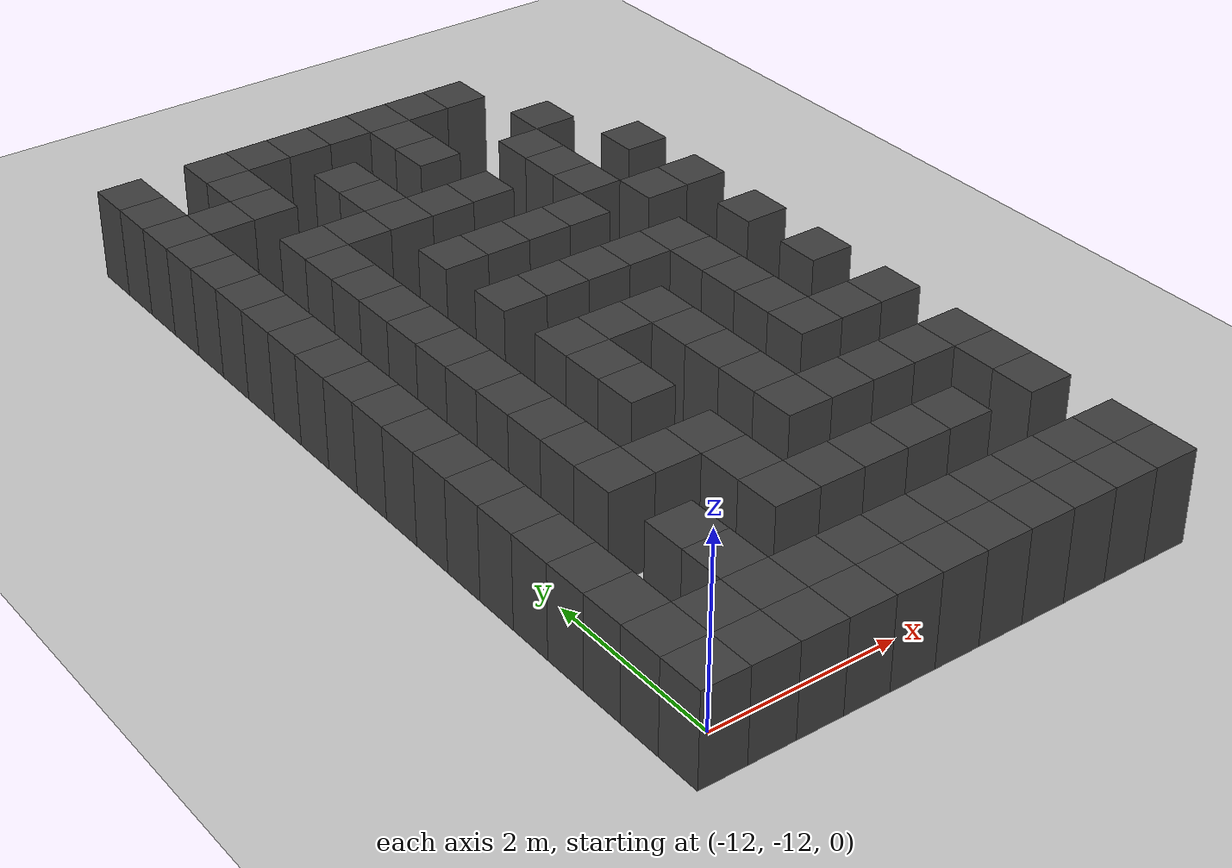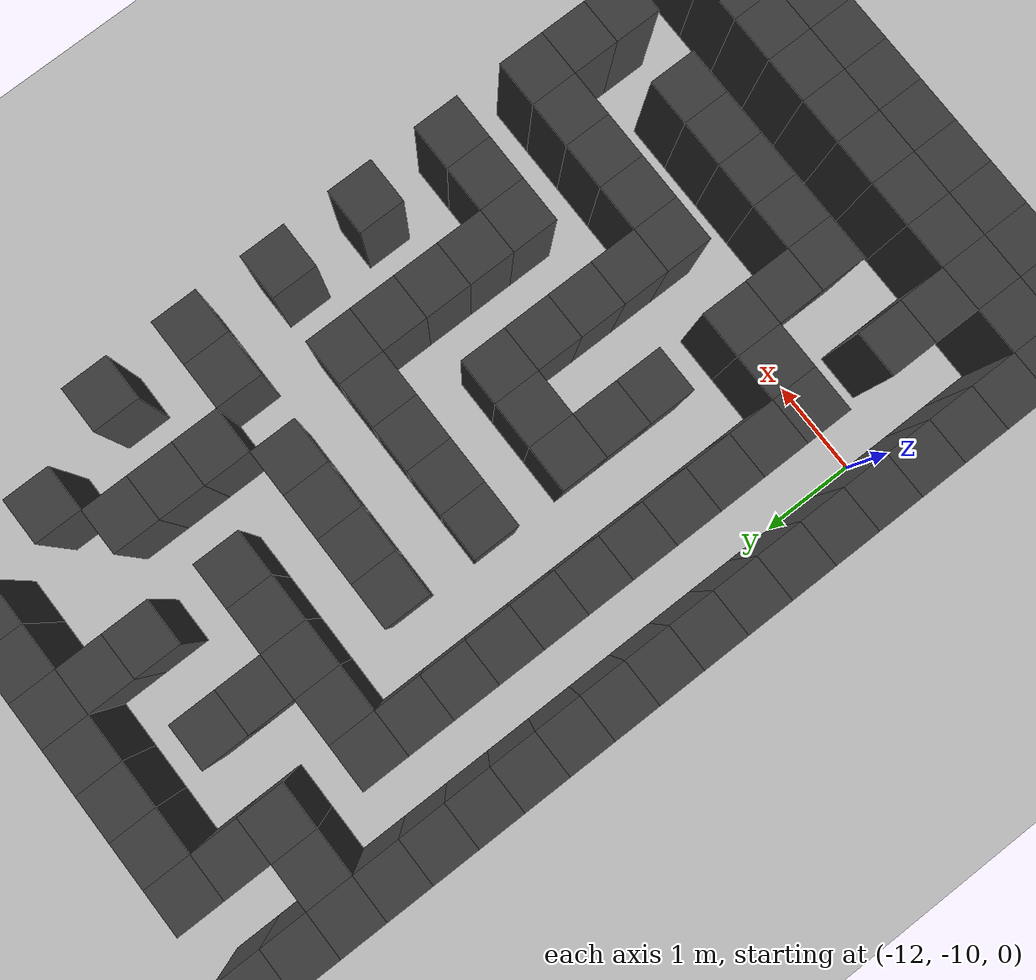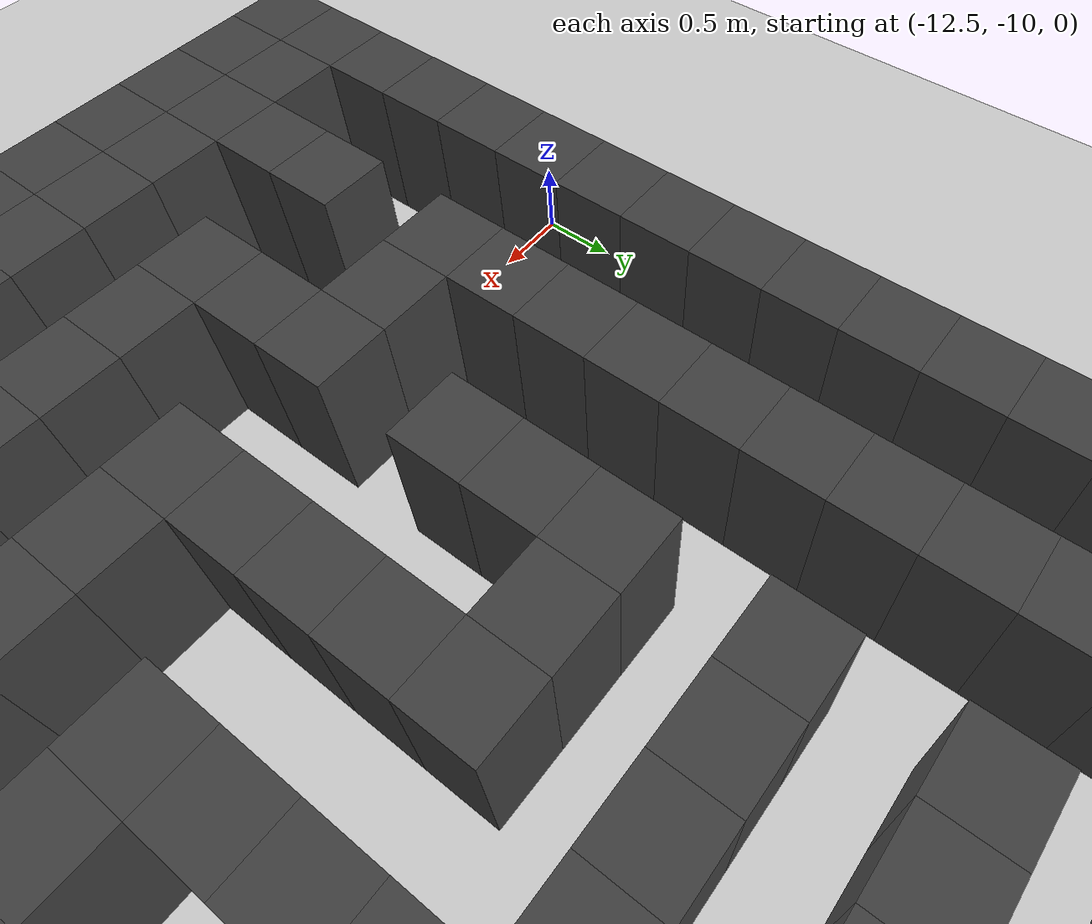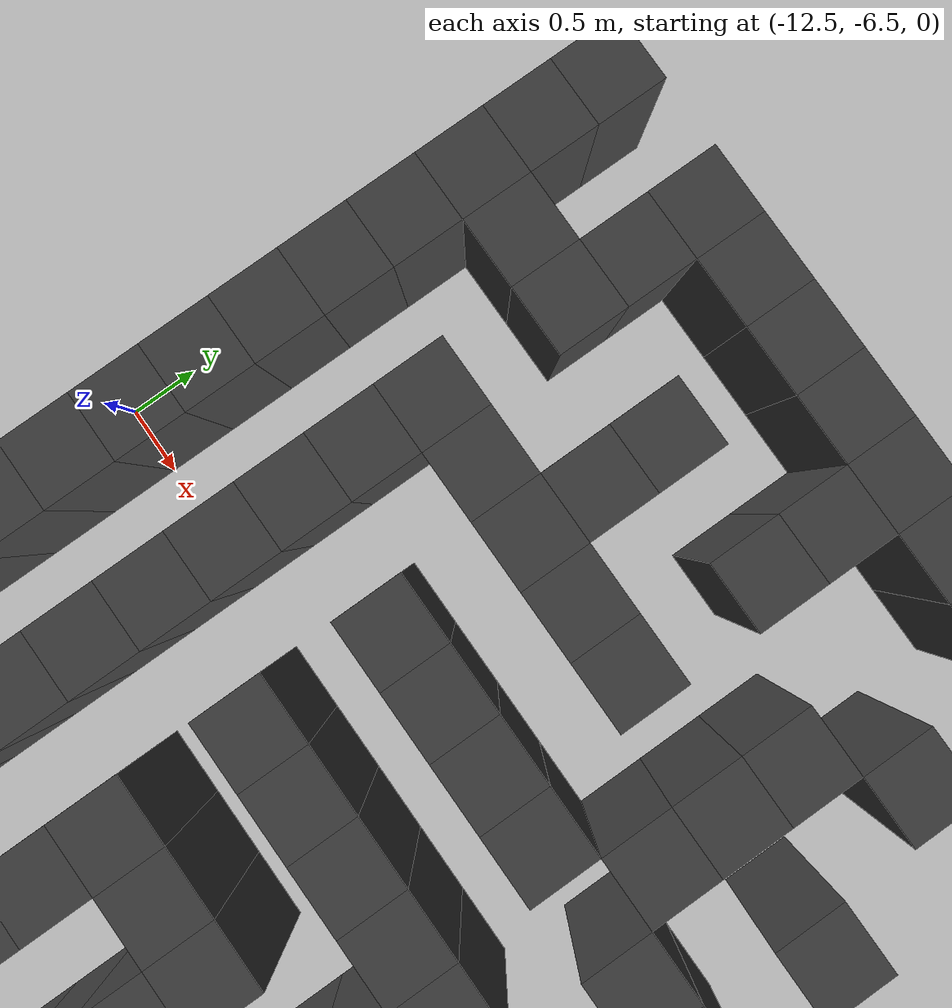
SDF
<sdf version="1.7">
 <world name="map_18505">
  <model name="ground_plane">
   <static>true</static>
   <link name="link">
    <collision name="collision">
     <geometry><plane><normal>0 0 1</normal><size>200 200</size></plane></geometry>
    </collision>
    <visual name="visual">
     <geometry><plane><normal>0 0 1</normal><size>200 200</size></plane></geometry>
     <material><ambient>0.8 0.8 0.8 1</ambient><diffuse>0.8 0.8 0.8 1</diffuse></material>
    </visual>
   </link>
  </model>
  <model name="maze_environment">
   <static>true</static>
   <link name="wall_759">
    <pose>-12.250 -2.750 0.500 0 0 0</pose>
    <collision name="col"><geometry><box><size>0.5 0.5 1.0</size></box></geometry></collision>
    <visual name="vis">
     <geometry><box><size>0.5 0.5 1.0</size></box></geometry>
     <material><ambient>0.15 0.15 0.15 1</ambient><diffuse>0.25 0.25 0.25 1</diffuse></material>
    </visual>
   </link>
   <link name="wall_760">
    <pose>-11.250 -2.750 0.500 0 0 0</pose>
    <collision name="col"><geometry><box><size>0.5 0.5 1.0</size></box></geometry></collision>
    <visual name="vis">
     <geometry><box><size>0.5 0.5 1.0</size></box></geometry>
     <material><ambient>0.15 0.15 0.15 1</ambient><diffuse>0.25 0.25 0.25 1</diffuse></material>
    </visual>
   </link>
   <link name="wall_761">
    <pose>-10.750 -2.750 0.500 0 0 0</pose>
    <collision name="col"><geometry><box><size>0.5 0.5 1.0</size></box></geometry></collision>
    <visual name="vis">
     <geometry><box><size>0.5 0.5 1.0</size></box></geometry>
     <material><ambient>0.15 0.15 0.15 1</ambient><diffuse>0.25 0.25 0.25 1</diffuse></material>
    </visual>
   </link>
   <link name="wall_762">
    <pose>-10.250 -2.750 0.500 0 0 0</pose>
    <collision name="col"><geometry><box><size>0.5 0.5 1.0</size></box></geometry></collision>
    <visual name="vis">
     <geometry><box><size>0.5 0.5 1.0</size></box></geometry>
     <material><ambient>0.15 0.15 0.15 1</ambient><diffuse>0.25 0.25 0.25 1</diffuse></material>
    </visual>
   </link>
   <link name="wall_763">
    <pose>-9.750 -2.750 0.500 0 0 0</pose>
    <collision name="col"><geometry><box><size>0.5 0.5 1.0</size></box></geometry></collision>
    <visual name="vis">
     <geometry><box><size>0.5 0.5 1.0</size></box></geometry>
     <material><ambient>0.15 0.15 0.15 1</ambient><diffuse>0.25 0.25 0.25 1</diffuse></material>
    </visual>
   </link>
   <link name="wall_764">
    <pose>-9.250 -2.750 0.500 0 0 0</pose>
    <collision name="col"><geometry><box><size>0.5 0.5 1.0</size></box></geometry></collision>
    <visual name="vis">
     <geometry><box><size>0.5 0.5 1.0</size></box></geometry>
     <material><ambient>0.15 0.15 0.15 1</ambient><diffuse>0.25 0.25 0.25 1</diffuse></material>
    </visual>
   </link>
   <link name="wall_765">
    <pose>-8.750 -2.750 0.500 0 0 0</pose>
    <collision name="col"><geometry><box><size>0.5 0.5 1.0</size></box></geometry></collision>
    <visual name="vis">
     <geometry><box><size>0.5 0.5 1.0</size></box></geometry>
     <material><ambient>0.15 0.15 0.15 1</ambient><diffuse>0.25 0.25 0.25 1</diffuse></material>
    </visual>
   </link>
   <link name="wall_766">
    <pose>-8.250 -2.750 0.500 0 0 0</pose>
    <collision name="col"><geometry><box><size>0.5 0.5 1.0</size></box></geometry></collision>
    <visual name="vis">
     <geometry><box><size>0.5 0.5 1.0</size></box></geometry>
     <material><ambient>0.15 0.15 0.15 1</ambient><diffuse>0.25 0.25 0.25 1</diffuse></material>
    </visual>
   </link>
   <link name="wall_799">
    <pose>-12.250 -3.250 0.500 0 0 0</pose>
    <collision name="col"><geometry><box><size>0.5 0.5 1.0</size></box></geometry></collision>
    <visual name="vis">
     <geometry><box><size>0.5 0.5 1.0</size></box></geometry>
     <material><ambient>0.15 0.15 0.15 1</ambient><diffuse>0.25 0.25 0.25 1</diffuse></material>
    </visual>
   </link>
   <link name="wall_800">
    <pose>-11.250 -3.250 0.500 0 0 0</pose>
    <collision name="col"><geometry><box><size>0.5 0.5 1.0</size></box></geometry></collision>
    <visual name="vis">
     <geometry><box><size>0.5 0.5 1.0</size></box></geometry>
     <material><ambient>0.15 0.15 0.15 1</ambient><diffuse>0.25 0.25 0.25 1</diffuse></material>
    </visual>
   </link>
   <link name="wall_801">
    <pose>-9.250 -3.250 0.500 0 0 0</pose>
    <collision name="col"><geometry><box><size>0.5 0.5 1.0</size></box></geometry></collision>
    <visual name="vis">
     <geometry><box><size>0.5 0.5 1.0</size></box></geometry>
     <material><ambient>0.15 0.15 0.15 1</ambient><diffuse>0.25 0.25 0.25 1</diffuse></material>
    </visual>
   </link>
   <link name="wall_811">
    <pose>-12.250 -3.750 0.500 0 0 0</pose>
    <collision name="col"><geometry><box><size>0.5 0.5 1.0</size></box></geometry></collision>
    <visual name="vis">
     <geometry><box><size>0.5 0.5 1.0</size></box></geometry>
     <material><ambient>0.15 0.15 0.15 1</ambient><diffuse>0.25 0.25 0.25 1</diffuse></material>
    </visual>
   </link>
   <link name="wall_812">
    <pose>-11.750 -3.750 0.500 0 0 0</pose>
    <collision name="col"><geometry><box><size>0.5 0.5 1.0</size></box></geometry></collision>
    <visual name="vis">
     <geometry><box><size>0.5 0.5 1.0</size></box></geometry>
     <material><ambient>0.15 0.15 0.15 1</ambient><diffuse>0.25 0.25 0.25 1</diffuse></material>
    </visual>
   </link>
   <link name="wall_813">
    <pose>-11.250 -3.750 0.500 0 0 0</pose>
    <collision name="col"><geometry><box><size>0.5 0.5 1.0</size></box></geometry></collision>
    <visual name="vis">
     <geometry><box><size>0.5 0.5 1.0</size></box></geometry>
     <material><ambient>0.15 0.15 0.15 1</ambient><diffuse>0.25 0.25 0.25 1</diffuse></material>
    </visual>
   </link>
   <link name="wall_814">
    <pose>-10.250 -3.750 0.500 0 0 0</pose>
    <collision name="col"><geometry><box><size>0.5 0.5 1.0</size></box></geometry></collision>
    <visual name="vis">
     <geometry><box><size>0.5 0.5 1.0</size></box></geometry>
     <material><ambient>0.15 0.15 0.15 1</ambient><diffuse>0.25 0.25 0.25 1</diffuse></material>
    </visual>
   </link>
   <link name="wall_815">
    <pose>-9.250 -3.750 0.500 0 0 0</pose>
    <collision name="col"><geometry><box><size>0.5 0.5 1.0</size></box></geometry></collision>
    <visual name="vis">
     <geometry><box><size>0.5 0.5 1.0</size></box></geometry>
     <material><ambient>0.15 0.15 0.15 1</ambient><diffuse>0.25 0.25 0.25 1</diffuse></material>
    </visual>
   </link>
   <link name="wall_816">
    <pose>-7.750 -3.750 0.500 0 0 0</pose>
    <collision name="col"><geometry><box><size>0.5 0.5 1.0</size></box></geometry></collision>
    <visual name="vis">
     <geometry><box><size>0.5 0.5 1.0</size></box></geometry>
     <material><ambient>0.15 0.15 0.15 1</ambient><diffuse>0.25 0.25 0.25 1</diffuse></material>
    </visual>
   </link>
   <link name="wall_846">
    <pose>-12.250 -4.250 0.500 0 0 0</pose>
    <collision name="col"><geometry><box><size>0.5 0.5 1.0</size></box></geometry></collision>
    <visual name="vis">
     <geometry><box><size>0.5 0.5 1.0</size></box></geometry>
     <material><ambient>0.15 0.15 0.15 1</ambient><diffuse>0.25 0.25 0.25 1</diffuse></material>
    </visual>
   </link>
   <link name="wall_847">
    <pose>-10.250 -4.250 0.500 0 0 0</pose>
    <collision name="col"><geometry><box><size>0.5 0.5 1.0</size></box></geometry></collision>
    <visual name="vis">
     <geometry><box><size>0.5 0.5 1.0</size></box></geometry>
     <material><ambient>0.15 0.15 0.15 1</ambient><diffuse>0.25 0.25 0.25 1</diffuse></material>
    </visual>
   </link>
   <link name="wall_848">
    <pose>-8.250 -4.250 0.500 0 0 0</pose>
    <collision name="col"><geometry><box><size>0.5 0.5 1.0</size></box></geometry></collision>
    <visual name="vis">
     <geometry><box><size>0.5 0.5 1.0</size></box></geometry>
     <material><ambient>0.15 0.15 0.15 1</ambient><diffuse>0.25 0.25 0.25 1</diffuse></material>
    </visual>
   </link>
   <link name="wall_862">
    <pose>-12.250 -4.750 0.500 0 0 0</pose>
    <collision name="col"><geometry><box><size>0.5 0.5 1.0</size></box></geometry></collision>
    <visual name="vis">
     <geometry><box><size>0.5 0.5 1.0</size></box></geometry>
     <material><ambient>0.15 0.15 0.15 1</ambient><diffuse>0.25 0.25 0.25 1</diffuse></material>
    </visual>
   </link>
   <link name="wall_863">
    <pose>-11.250 -4.750 0.500 0 0 0</pose>
    <collision name="col"><geometry><box><size>0.5 0.5 1.0</size></box></geometry></collision>
    <visual name="vis">
     <geometry><box><size>0.5 0.5 1.0</size></box></geometry>
     <material><ambient>0.15 0.15 0.15 1</ambient><diffuse>0.25 0.25 0.25 1</diffuse></material>
    </visual>
   </link>
   <link name="wall_864">
    <pose>-10.750 -4.750 0.500 0 0 0</pose>
    <collision name="col"><geometry><box><size>0.5 0.5 1.0</size></box></geometry></collision>
    <visual name="vis">
     <geometry><box><size>0.5 0.5 1.0</size></box></geometry>
     <material><ambient>0.15 0.15 0.15 1</ambient><diffuse>0.25 0.25 0.25 1</diffuse></material>
    </visual>
   </link>
   <link name="wall_865">
    <pose>-10.250 -4.750 0.500 0 0 0</pose>
    <collision name="col"><geometry><box><size>0.5 0.5 1.0</size></box></geometry></collision>
    <visual name="vis">
     <geometry><box><size>0.5 0.5 1.0</size></box></geometry>
     <material><ambient>0.15 0.15 0.15 1</ambient><diffuse>0.25 0.25 0.25 1</diffuse></material>
    </visual>
   </link>
   <link name="wall_866">
    <pose>-9.750 -4.750 0.500 0 0 0</pose>
    <collision name="col"><geometry><box><size>0.5 0.5 1.0</size></box></geometry></collision>
    <visual name="vis">
     <geometry><box><size>0.5 0.5 1.0</size></box></geometry>
     <material><ambient>0.15 0.15 0.15 1</ambient><diffuse>0.25 0.25 0.25 1</diffuse></material>
    </visual>
   </link>
   <link name="wall_867">
    <pose>-9.250 -4.750 0.500 0 0 0</pose>
    <collision name="col"><geometry><box><size>0.5 0.5 1.0</size></box></geometry></collision>
    <visual name="vis">
     <geometry><box><size>0.5 0.5 1.0</size></box></geometry>
     <material><ambient>0.15 0.15 0.15 1</ambient><diffuse>0.25 0.25 0.25 1</diffuse></material>
    </visual>
   </link>
   <link name="wall_868">
    <pose>-8.250 -4.750 0.500 0 0 0</pose>
    <collision name="col"><geometry><box><size>0.5 0.5 1.0</size></box></geometry></collision>
    <visual name="vis">
     <geometry><box><size>0.5 0.5 1.0</size></box></geometry>
     <material><ambient>0.15 0.15 0.15 1</ambient><diffuse>0.25 0.25 0.25 1</diffuse></material>
    </visual>
   </link>
   <link name="wall_869">
    <pose>-7.250 -4.750 0.500 0 0 0</pose>
    <collision name="col"><geometry><box><size>0.5 0.5 1.0</size></box></geometry></collision>
    <visual name="vis">
     <geometry><box><size>0.5 0.5 1.0</size></box></geometry>
     <material><ambient>0.15 0.15 0.15 1</ambient><diffuse>0.25 0.25 0.25 1</diffuse></material>
    </visual>
   </link>
   <link name="wall_894">
    <pose>-12.250 -5.250 0.500 0 0 0</pose>
    <collision name="col"><geometry><box><size>0.5 0.5 1.0</size></box></geometry></collision>
    <visual name="vis">
     <geometry><box><size>0.5 0.5 1.0</size></box></geometry>
     <material><ambient>0.15 0.15 0.15 1</ambient><diffuse>0.25 0.25 0.25 1</diffuse></material>
    </visual>
   </link>
   <link name="wall_895">
    <pose>-11.250 -5.250 0.500 0 0 0</pose>
    <collision name="col"><geometry><box><size>0.5 0.5 1.0</size></box></geometry></collision>
    <visual name="vis">
     <geometry><box><size>0.5 0.5 1.0</size></box></geometry>
     <material><ambient>0.15 0.15 0.15 1</ambient><diffuse>0.25 0.25 0.25 1</diffuse></material>
    </visual>
   </link>
   <link name="wall_896">
    <pose>-8.250 -5.250 0.500 0 0 0</pose>
    <collision name="col"><geometry><box><size>0.5 0.5 1.0</size></box></geometry></collision>
    <visual name="vis">
     <geometry><box><size>0.5 0.5 1.0</size></box></geometry>
     <material><ambient>0.15 0.15 0.15 1</ambient><diffuse>0.25 0.25 0.25 1</diffuse></material>
    </visual>
   </link>
   <link name="wall_910">
    <pose>-12.250 -5.750 0.500 0 0 0</pose>
    <collision name="col"><geometry><box><size>0.5 0.5 1.0</size></box></geometry></collision>
    <visual name="vis">
     <geometry><box><size>0.5 0.5 1.0</size></box></geometry>
     <material><ambient>0.15 0.15 0.15 1</ambient><diffuse>0.25 0.25 0.25 1</diffuse></material>
    </visual>
   </link>
   <link name="wall_911">
    <pose>-11.250 -5.750 0.500 0 0 0</pose>
    <collision name="col"><geometry><box><size>0.5 0.5 1.0</size></box></geometry></collision>
    <visual name="vis">
     <geometry><box><size>0.5 0.5 1.0</size></box></geometry>
     <material><ambient>0.15 0.15 0.15 1</ambient><diffuse>0.25 0.25 0.25 1</diffuse></material>
    </visual>
   </link>
   <link name="wall_912">
    <pose>-10.250 -5.750 0.500 0 0 0</pose>
    <collision name="col"><geometry><box><size>0.5 0.5 1.0</size></box></geometry></collision>
    <visual name="vis">
     <geometry><box><size>0.5 0.5 1.0</size></box></geometry>
     <material><ambient>0.15 0.15 0.15 1</ambient><diffuse>0.25 0.25 0.25 1</diffuse></material>
    </visual>
   </link>
   <link name="wall_913">
    <pose>-9.750 -5.750 0.500 0 0 0</pose>
    <collision name="col"><geometry><box><size>0.5 0.5 1.0</size></box></geometry></collision>
    <visual name="vis">
     <geometry><box><size>0.5 0.5 1.0</size></box></geometry>
     <material><ambient>0.15 0.15 0.15 1</ambient><diffuse>0.25 0.25 0.25 1</diffuse></material>
    </visual>
   </link>
   <link name="wall_914">
    <pose>-9.250 -5.750 0.500 0 0 0</pose>
    <collision name="col"><geometry><box><size>0.5 0.5 1.0</size></box></geometry></collision>
    <visual name="vis">
     <geometry><box><size>0.5 0.5 1.0</size></box></geometry>
     <material><ambient>0.15 0.15 0.15 1</ambient><diffuse>0.25 0.25 0.25 1</diffuse></material>
    </visual>
   </link>
   <link name="wall_915">
    <pose>-8.750 -5.750 0.500 0 0 0</pose>
    <collision name="col"><geometry><box><size>0.5 0.5 1.0</size></box></geometry></collision>
    <visual name="vis">
     <geometry><box><size>0.5 0.5 1.0</size></box></geometry>
     <material><ambient>0.15 0.15 0.15 1</ambient><diffuse>0.25 0.25 0.25 1</diffuse></material>
    </visual>
   </link>
   <link name="wall_916">
    <pose>-7.750 -5.750 0.500 0 0 0</pose>
    <collision name="col"><geometry><box><size>0.5 0.5 1.0</size></box></geometry></collision>
    <visual name="vis">
     <geometry><box><size>0.5 0.5 1.0</size></box></geometry>
     <material><ambient>0.15 0.15 0.15 1</ambient><diffuse>0.25 0.25 0.25 1</diffuse></material>
    </visual>
   </link>
   <link name="wall_917">
    <pose>-7.250 -5.750 0.500 0 0 0</pose>
    <collision name="col"><geometry><box><size>0.5 0.5 1.0</size></box></geometry></collision>
    <visual name="vis">
     <geometry><box><size>0.5 0.5 1.0</size></box></geometry>
     <material><ambient>0.15 0.15 0.15 1</ambient><diffuse>0.25 0.25 0.25 1</diffuse></material>
    </visual>
   </link>
   <link name="wall_946">
    <pose>-12.250 -6.250 0.500 0 0 0</pose>
    <collision name="col"><geometry><box><size>0.5 0.5 1.0</size></box></geometry></collision>
    <visual name="vis">
     <geometry><box><size>0.5 0.5 1.0</size></box></geometry>
     <material><ambient>0.15 0.15 0.15 1</ambient><diffuse>0.25 0.25 0.25 1</diffuse></material>
    </visual>
   </link>
   <link name="wall_947">
    <pose>-11.250 -6.250 0.500 0 0 0</pose>
    <collision name="col"><geometry><box><size>0.5 0.5 1.0</size></box></geometry></collision>
    <visual name="vis">
     <geometry><box><size>0.5 0.5 1.0</size></box></geometry>
     <material><ambient>0.15 0.15 0.15 1</ambient><diffuse>0.25 0.25 0.25 1</diffuse></material>
    </visual>
   </link>
   <link name="wall_958">
    <pose>-12.250 -6.750 0.500 0 0 0</pose>
    <collision name="col"><geometry><box><size>0.5 0.5 1.0</size></box></geometry></collision>
    <visual name="vis">
     <geometry><box><size>0.5 0.5 1.0</size></box></geometry>
     <material><ambient>0.15 0.15 0.15 1</ambient><diffuse>0.25 0.25 0.25 1</diffuse></material>
    </visual>
   </link>
   <link name="wall_959">
    <pose>-11.250 -6.750 0.500 0 0 0</pose>
    <collision name="col"><geometry><box><size>0.5 0.5 1.0</size></box></geometry></collision>
    <visual name="vis">
     <geometry><box><size>0.5 0.5 1.0</size></box></geometry>
     <material><ambient>0.15 0.15 0.15 1</ambient><diffuse>0.25 0.25 0.25 1</diffuse></material>
    </visual>
   </link>
   <link name="wall_960">
    <pose>-10.250 -6.750 0.500 0 0 0</pose>
    <collision name="col"><geometry><box><size>0.5 0.5 1.0</size></box></geometry></collision>
    <visual name="vis">
     <geometry><box><size>0.5 0.5 1.0</size></box></geometry>
     <material><ambient>0.15 0.15 0.15 1</ambient><diffuse>0.25 0.25 0.25 1</diffuse></material>
    </visual>
   </link>
   <link name="wall_961">
    <pose>-9.750 -6.750 0.500 0 0 0</pose>
    <collision name="col"><geometry><box><size>0.5 0.5 1.0</size></box></geometry></collision>
    <visual name="vis">
     <geometry><box><size>0.5 0.5 1.0</size></box></geometry>
     <material><ambient>0.15 0.15 0.15 1</ambient><diffuse>0.25 0.25 0.25 1</diffuse></material>
    </visual>
   </link>
   <link name="wall_962">
    <pose>-9.250 -6.750 0.500 0 0 0</pose>
    <collision name="col"><geometry><box><size>0.5 0.5 1.0</size></box></geometry></collision>
    <visual name="vis">
     <geometry><box><size>0.5 0.5 1.0</size></box></geometry>
     <material><ambient>0.15 0.15 0.15 1</ambient><diffuse>0.25 0.25 0.25 1</diffuse></material>
    </visual>
   </link>
   <link name="wall_963">
    <pose>-8.750 -6.750 0.500 0 0 0</pose>
    <collision name="col"><geometry><box><size>0.5 0.5 1.0</size></box></geometry></collision>
    <visual name="vis">
     <geometry><box><size>0.5 0.5 1.0</size></box></geometry>
     <material><ambient>0.15 0.15 0.15 1</ambient><diffuse>0.25 0.25 0.25 1</diffuse></material>
    </visual>
   </link>
   <link name="wall_964">
    <pose>-8.250 -6.750 0.500 0 0 0</pose>
    <collision name="col"><geometry><box><size>0.5 0.5 1.0</size></box></geometry></collision>
    <visual name="vis">
     <geometry><box><size>0.5 0.5 1.0</size></box></geometry>
     <material><ambient>0.15 0.15 0.15 1</ambient><diffuse>0.25 0.25 0.25 1</diffuse></material>
    </visual>
   </link>
   <link name="wall_965">
    <pose>-7.250 -6.750 0.500 0 0 0</pose>
    <collision name="col"><geometry><box><size>0.5 0.5 1.0</size></box></geometry></collision>
    <visual name="vis">
     <geometry><box><size>0.5 0.5 1.0</size></box></geometry>
     <material><ambient>0.15 0.15 0.15 1</ambient><diffuse>0.25 0.25 0.25 1</diffuse></material>
    </visual>
   </link>
   <link name="wall_992">
    <pose>-12.250 -7.250 0.500 0 0 0</pose>
    <collision name="col"><geometry><box><size>0.5 0.5 1.0</size></box></geometry></collision>
    <visual name="vis">
     <geometry><box><size>0.5 0.5 1.0</size></box></geometry>
     <material><ambient>0.15 0.15 0.15 1</ambient><diffuse>0.25 0.25 0.25 1</diffuse></material>
    </visual>
   </link>
   <link name="wall_993">
    <pose>-11.250 -7.250 0.500 0 0 0</pose>
    <collision name="col"><geometry><box><size>0.5 0.5 1.0</size></box></geometry></collision>
    <visual name="vis">
     <geometry><box><size>0.5 0.5 1.0</size></box></geometry>
     <material><ambient>0.15 0.15 0.15 1</ambient><diffuse>0.25 0.25 0.25 1</diffuse></material>
    </visual>
   </link>
   <link name="wall_994">
    <pose>-8.250 -7.250 0.500 0 0 0</pose>
    <collision name="col"><geometry><box><size>0.5 0.5 1.0</size></box></geometry></collision>
    <visual name="vis">
     <geometry><box><size>0.5 0.5 1.0</size></box></geometry>
     <material><ambient>0.15 0.15 0.15 1</ambient><diffuse>0.25 0.25 0.25 1</diffuse></material>
    </visual>
   </link>
   <link name="wall_1004">
    <pose>-12.250 -7.750 0.500 0 0 0</pose>
    <collision name="col"><geometry><box><size>0.5 0.5 1.0</size></box></geometry></collision>
    <visual name="vis">
     <geometry><box><size>0.5 0.5 1.0</size></box></geometry>
     <material><ambient>0.15 0.15 0.15 1</ambient><diffuse>0.25 0.25 0.25 1</diffuse></material>
    </visual>
   </link>
   <link name="wall_1005">
    <pose>-11.250 -7.750 0.500 0 0 0</pose>
    <collision name="col"><geometry><box><size>0.5 0.5 1.0</size></box></geometry></collision>
    <visual name="vis">
     <geometry><box><size>0.5 0.5 1.0</size></box></geometry>
     <material><ambient>0.15 0.15 0.15 1</ambient><diffuse>0.25 0.25 0.25 1</diffuse></material>
    </visual>
   </link>
   <link name="wall_1006">
    <pose>-10.250 -7.750 0.500 0 0 0</pose>
    <collision name="col"><geometry><box><size>0.5 0.5 1.0</size></box></geometry></collision>
    <visual name="vis">
     <geometry><box><size>0.5 0.5 1.0</size></box></geometry>
     <material><ambient>0.15 0.15 0.15 1</ambient><diffuse>0.25 0.25 0.25 1</diffuse></material>
    </visual>
   </link>
   <link name="wall_1007">
    <pose>-9.750 -7.750 0.500 0 0 0</pose>
    <collision name="col"><geometry><box><size>0.5 0.5 1.0</size></box></geometry></collision>
    <visual name="vis">
     <geometry><box><size>0.5 0.5 1.0</size></box></geometry>
     <material><ambient>0.15 0.15 0.15 1</ambient><diffuse>0.25 0.25 0.25 1</diffuse></material>
    </visual>
   </link>
   <link name="wall_1008">
    <pose>-9.250 -7.750 0.500 0 0 0</pose>
    <collision name="col"><geometry><box><size>0.5 0.5 1.0</size></box></geometry></collision>
    <visual name="vis">
     <geometry><box><size>0.5 0.5 1.0</size></box></geometry>
     <material><ambient>0.15 0.15 0.15 1</ambient><diffuse>0.25 0.25 0.25 1</diffuse></material>
    </visual>
   </link>
   <link name="wall_1009">
    <pose>-8.250 -7.750 0.500 0 0 0</pose>
    <collision name="col"><geometry><box><size>0.5 0.5 1.0</size></box></geometry></collision>
    <visual name="vis">
     <geometry><box><size>0.5 0.5 1.0</size></box></geometry>
     <material><ambient>0.15 0.15 0.15 1</ambient><diffuse>0.25 0.25 0.25 1</diffuse></material>
    </visual>
   </link>
   <link name="wall_1010">
    <pose>-7.250 -7.750 0.500 0 0 0</pose>
    <collision name="col"><geometry><box><size>0.5 0.5 1.0</size></box></geometry></collision>
    <visual name="vis">
     <geometry><box><size>0.5 0.5 1.0</size></box></geometry>
     <material><ambient>0.15 0.15 0.15 1</ambient><diffuse>0.25 0.25 0.25 1</diffuse></material>
    </visual>
   </link>
   <link name="wall_1041">
    <pose>-12.250 -8.250 0.500 0 0 0</pose>
    <collision name="col"><geometry><box><size>0.5 0.5 1.0</size></box></geometry></collision>
    <visual name="vis">
     <geometry><box><size>0.5 0.5 1.0</size></box></geometry>
     <material><ambient>0.15 0.15 0.15 1</ambient><diffuse>0.25 0.25 0.25 1</diffuse></material>
    </visual>
   </link>
   <link name="wall_1042">
    <pose>-11.250 -8.250 0.500 0 0 0</pose>
    <collision name="col"><geometry><box><size>0.5 0.5 1.0</size></box></geometry></collision>
    <visual name="vis">
     <geometry><box><size>0.5 0.5 1.0</size></box></geometry>
     <material><ambient>0.15 0.15 0.15 1</ambient><diffuse>0.25 0.25 0.25 1</diffuse></material>
    </visual>
   </link>
   <link name="wall_1043">
    <pose>-10.250 -8.250 0.500 0 0 0</pose>
    <collision name="col"><geometry><box><size>0.5 0.5 1.0</size></box></geometry></collision>
    <visual name="vis">
     <geometry><box><size>0.5 0.5 1.0</size></box></geometry>
     <material><ambient>0.15 0.15 0.15 1</ambient><diffuse>0.25 0.25 0.25 1</diffuse></material>
    </visual>
   </link>
   <link name="wall_1044">
    <pose>-9.250 -8.250 0.500 0 0 0</pose>
    <collision name="col"><geometry><box><size>0.5 0.5 1.0</size></box></geometry></collision>
    <visual name="vis">
     <geometry><box><size>0.5 0.5 1.0</size></box></geometry>
     <material><ambient>0.15 0.15 0.15 1</ambient><diffuse>0.25 0.25 0.25 1</diffuse></material>
    </visual>
   </link>
   <link name="wall_1045">
    <pose>-8.250 -8.250 0.500 0 0 0</pose>
    <collision name="col"><geometry><box><size>0.5 0.5 1.0</size></box></geometry></collision>
    <visual name="vis">
     <geometry><box><size>0.5 0.5 1.0</size></box></geometry>
     <material><ambient>0.15 0.15 0.15 1</ambient><diffuse>0.25 0.25 0.25 1</diffuse></material>
    </visual>
   </link>
   <link name="wall_1054">
    <pose>-12.250 -8.750 0.500 0 0 0</pose>
    <collision name="col"><geometry><box><size>0.5 0.5 1.0</size></box></geometry></collision>
    <visual name="vis">
     <geometry><box><size>0.5 0.5 1.0</size></box></geometry>
     <material><ambient>0.15 0.15 0.15 1</ambient><diffuse>0.25 0.25 0.25 1</diffuse></material>
    </visual>
   </link>
   <link name="wall_1055">
    <pose>-11.250 -8.750 0.500 0 0 0</pose>
    <collision name="col"><geometry><box><size>0.5 0.5 1.0</size></box></geometry></collision>
    <visual name="vis">
     <geometry><box><size>0.5 0.5 1.0</size></box></geometry>
     <material><ambient>0.15 0.15 0.15 1</ambient><diffuse>0.25 0.25 0.25 1</diffuse></material>
    </visual>
   </link>
   <link name="wall_1056">
    <pose>-10.250 -8.750 0.500 0 0 0</pose>
    <collision name="col"><geometry><box><size>0.5 0.5 1.0</size></box></geometry></collision>
    <visual name="vis">
     <geometry><box><size>0.5 0.5 1.0</size></box></geometry>
     <material><ambient>0.15 0.15 0.15 1</ambient><diffuse>0.25 0.25 0.25 1</diffuse></material>
    </visual>
   </link>
   <link name="wall_1057">
    <pose>-9.250 -8.750 0.500 0 0 0</pose>
    <collision name="col"><geometry><box><size>0.5 0.5 1.0</size></box></geometry></collision>
    <visual name="vis">
     <geometry><box><size>0.5 0.5 1.0</size></box></geometry>
     <material><ambient>0.15 0.15 0.15 1</ambient><diffuse>0.25 0.25 0.25 1</diffuse></material>
    </visual>
   </link>
   <link name="wall_1058">
    <pose>-8.250 -8.750 0.500 0 0 0</pose>
    <collision name="col"><geometry><box><size>0.5 0.5 1.0</size></box></geometry></collision>
    <visual name="vis">
     <geometry><box><size>0.5 0.5 1.0</size></box></geometry>
     <material><ambient>0.15 0.15 0.15 1</ambient><diffuse>0.25 0.25 0.25 1</diffuse></material>
    </visual>
   </link>
   <link name="wall_1059">
    <pose>-7.750 -8.750 0.500 0 0 0</pose>
    <collision name="col"><geometry><box><size>0.5 0.5 1.0</size></box></geometry></collision>
    <visual name="vis">
     <geometry><box><size>0.5 0.5 1.0</size></box></geometry>
     <material><ambient>0.15 0.15 0.15 1</ambient><diffuse>0.25 0.25 0.25 1</diffuse></material>
    </visual>
   </link>
   <link name="wall_1060">
    <pose>-7.250 -8.750 0.500 0 0 0</pose>
    <collision name="col"><geometry><box><size>0.5 0.5 1.0</size></box></geometry></collision>
    <visual name="vis">
     <geometry><box><size>0.5 0.5 1.0</size></box></geometry>
     <material><ambient>0.15 0.15 0.15 1</ambient><diffuse>0.25 0.25 0.25 1</diffuse></material>
    </visual>
   </link>
   <link name="wall_1093">
    <pose>-12.250 -9.250 0.500 0 0 0</pose>
    <collision name="col"><geometry><box><size>0.5 0.5 1.0</size></box></geometry></collision>
    <visual name="vis">
     <geometry><box><size>0.5 0.5 1.0</size></box></geometry>
     <material><ambient>0.15 0.15 0.15 1</ambient><diffuse>0.25 0.25 0.25 1</diffuse></material>
    </visual>
   </link>
   <link name="wall_1094">
    <pose>-11.250 -9.250 0.500 0 0 0</pose>
    <collision name="col"><geometry><box><size>0.5 0.5 1.0</size></box></geometry></collision>
    <visual name="vis">
     <geometry><box><size>0.5 0.5 1.0</size></box></geometry>
     <material><ambient>0.15 0.15 0.15 1</ambient><diffuse>0.25 0.25 0.25 1</diffuse></material>
    </visual>
   </link>
   <link name="wall_1095">
    <pose>-9.250 -9.250 0.500 0 0 0</pose>
    <collision name="col"><geometry><box><size>0.5 0.5 1.0</size></box></geometry></collision>
    <visual name="vis">
     <geometry><box><size>0.5 0.5 1.0</size></box></geometry>
     <material><ambient>0.15 0.15 0.15 1</ambient><diffuse>0.25 0.25 0.25 1</diffuse></material>
    </visual>
   </link>
   <link name="wall_1104">
    <pose>-12.250 -9.750 0.500 0 0 0</pose>
    <collision name="col"><geometry><box><size>0.5 0.5 1.0</size></box></geometry></collision>
    <visual name="vis">
     <geometry><box><size>0.5 0.5 1.0</size></box></geometry>
     <material><ambient>0.15 0.15 0.15 1</ambient><diffuse>0.25 0.25 0.25 1</diffuse></material>
    </visual>
   </link>
   <link name="wall_1105">
    <pose>-11.250 -9.750 0.500 0 0 0</pose>
    <collision name="col"><geometry><box><size>0.5 0.5 1.0</size></box></geometry></collision>
    <visual name="vis">
     <geometry><box><size>0.5 0.5 1.0</size></box></geometry>
     <material><ambient>0.15 0.15 0.15 1</ambient><diffuse>0.25 0.25 0.25 1</diffuse></material>
    </visual>
   </link>
   <link name="wall_1106">
    <pose>-10.750 -9.750 0.500 0 0 0</pose>
    <collision name="col"><geometry><box><size>0.5 0.5 1.0</size></box></geometry></collision>
    <visual name="vis">
     <geometry><box><size>0.5 0.5 1.0</size></box></geometry>
     <material><ambient>0.15 0.15 0.15 1</ambient><diffuse>0.25 0.25 0.25 1</diffuse></material>
    </visual>
   </link>
   <link name="wall_1107">
    <pose>-10.250 -9.750 0.500 0 0 0</pose>
    <collision name="col"><geometry><box><size>0.5 0.5 1.0</size></box></geometry></collision>
    <visual name="vis">
     <geometry><box><size>0.5 0.5 1.0</size></box></geometry>
     <material><ambient>0.15 0.15 0.15 1</ambient><diffuse>0.25 0.25 0.25 1</diffuse></material>
    </visual>
   </link>
   <link name="wall_1108">
    <pose>-9.250 -9.750 0.500 0 0 0</pose>
    <collision name="col"><geometry><box><size>0.5 0.5 1.0</size></box></geometry></collision>
    <visual name="vis">
     <geometry><box><size>0.5 0.5 1.0</size></box></geometry>
     <material><ambient>0.15 0.15 0.15 1</ambient><diffuse>0.25 0.25 0.25 1</diffuse></material>
    </visual>
   </link>
   <link name="wall_1109">
    <pose>-8.750 -9.750 0.500 0 0 0</pose>
    <collision name="col"><geometry><box><size>0.5 0.5 1.0</size></box></geometry></collision>
    <visual name="vis">
     <geometry><box><size>0.5 0.5 1.0</size></box></geometry>
     <material><ambient>0.15 0.15 0.15 1</ambient><diffuse>0.25 0.25 0.25 1</diffuse></material>
    </visual>
   </link>
   <link name="wall_1110">
    <pose>-8.250 -9.750 0.500 0 0 0</pose>
    <collision name="col"><geometry><box><size>0.5 0.5 1.0</size></box></geometry></collision>
    <visual name="vis">
     <geometry><box><size>0.5 0.5 1.0</size></box></geometry>
     <material><ambient>0.15 0.15 0.15 1</ambient><diffuse>0.25 0.25 0.25 1</diffuse></material>
    </visual>
   </link>
   <link name="wall_1111">
    <pose>-7.750 -9.750 0.500 0 0 0</pose>
    <collision name="col"><geometry><box><size>0.5 0.5 1.0</size></box></geometry></collision>
    <visual name="vis">
     <geometry><box><size>0.5 0.5 1.0</size></box></geometry>
     <material><ambient>0.15 0.15 0.15 1</ambient><diffuse>0.25 0.25 0.25 1</diffuse></material>
    </visual>
   </link>
   <link name="wall_1112">
    <pose>-7.250 -9.750 0.500 0 0 0</pose>
    <collision name="col"><geometry><box><size>0.5 0.5 1.0</size></box></geometry></collision>
    <visual name="vis">
     <geometry><box><size>0.5 0.5 1.0</size></box></geometry>
     <material><ambient>0.15 0.15 0.15 1</ambient><diffuse>0.25 0.25 0.25 1</diffuse></material>
    </visual>
   </link>
   <link name="wall_1144">
    <pose>-12.250 -10.250 0.500 0 0 0</pose>
    <collision name="col"><geometry><box><size>0.5 0.5 1.0</size></box></geometry></collision>
    <visual name="vis">
     <geometry><box><size>0.5 0.5 1.0</size></box></geometry>
     <material><ambient>0.15 0.15 0.15 1</ambient><diffuse>0.25 0.25 0.25 1</diffuse></material>
    </visual>
   </link>
   <link name="wall_1145">
    <pose>-10.250 -10.250 0.500 0 0 0</pose>
    <collision name="col"><geometry><box><size>0.5 0.5 1.0</size></box></geometry></collision>
    <visual name="vis">
     <geometry><box><size>0.5 0.5 1.0</size></box></geometry>
     <material><ambient>0.15 0.15 0.15 1</ambient><diffuse>0.25 0.25 0.25 1</diffuse></material>
    </visual>
   </link>
   <link name="wall_1146">
    <pose>-7.250 -10.250 0.500 0 0 0</pose>
    <collision name="col"><geometry><box><size>0.5 0.5 1.0</size></box></geometry></collision>
    <visual name="vis">
     <geometry><box><size>0.5 0.5 1.0</size></box></geometry>
     <material><ambient>0.15 0.15 0.15 1</ambient><diffuse>0.25 0.25 0.25 1</diffuse></material>
    </visual>
   </link>
   <link name="wall_1157">
    <pose>-12.250 -10.750 0.500 0 0 0</pose>
    <collision name="col"><geometry><box><size>0.5 0.5 1.0</size></box></geometry></collision>
    <visual name="vis">
     <geometry><box><size>0.5 0.5 1.0</size></box></geometry>
     <material><ambient>0.15 0.15 0.15 1</ambient><diffuse>0.25 0.25 0.25 1</diffuse></material>
    </visual>
   </link>
   <link name="wall_1158">
    <pose>-11.250 -10.750 0.500 0 0 0</pose>
    <collision name="col"><geometry><box><size>0.5 0.5 1.0</size></box></geometry></collision>
    <visual name="vis">
     <geometry><box><size>0.5 0.5 1.0</size></box></geometry>
     <material><ambient>0.15 0.15 0.15 1</ambient><diffuse>0.25 0.25 0.25 1</diffuse></material>
    </visual>
   </link>
   <link name="wall_1159">
    <pose>-10.250 -10.750 0.500 0 0 0</pose>
    <collision name="col"><geometry><box><size>0.5 0.5 1.0</size></box></geometry></collision>
    <visual name="vis">
     <geometry><box><size>0.5 0.5 1.0</size></box></geometry>
     <material><ambient>0.15 0.15 0.15 1</ambient><diffuse>0.25 0.25 0.25 1</diffuse></material>
    </visual>
   </link>
   <link name="wall_1160">
    <pose>-9.750 -10.750 0.500 0 0 0</pose>
    <collision name="col"><geometry><box><size>0.5 0.5 1.0</size></box></geometry></collision>
    <visual name="vis">
     <geometry><box><size>0.5 0.5 1.0</size></box></geometry>
     <material><ambient>0.15 0.15 0.15 1</ambient><diffuse>0.25 0.25 0.25 1</diffuse></material>
    </visual>
   </link>
   <link name="wall_1161">
    <pose>-9.250 -10.750 0.500 0 0 0</pose>
    <collision name="col"><geometry><box><size>0.5 0.5 1.0</size></box></geometry></collision>
    <visual name="vis">
     <geometry><box><size>0.5 0.5 1.0</size></box></geometry>
     <material><ambient>0.15 0.15 0.15 1</ambient><diffuse>0.25 0.25 0.25 1</diffuse></material>
    </visual>
   </link>
   <link name="wall_1162">
    <pose>-8.750 -10.750 0.500 0 0 0</pose>
    <collision name="col"><geometry><box><size>0.5 0.5 1.0</size></box></geometry></collision>
    <visual name="vis">
     <geometry><box><size>0.5 0.5 1.0</size></box></geometry>
     <material><ambient>0.15 0.15 0.15 1</ambient><diffuse>0.25 0.25 0.25 1</diffuse></material>
    </visual>
   </link>
   <link name="wall_1163">
    <pose>-8.250 -10.750 0.500 0 0 0</pose>
    <collision name="col"><geometry><box><size>0.5 0.5 1.0</size></box></geometry></collision>
    <visual name="vis">
     <geometry><box><size>0.5 0.5 1.0</size></box></geometry>
     <material><ambient>0.15 0.15 0.15 1</ambient><diffuse>0.25 0.25 0.25 1</diffuse></material>
    </visual>
   </link>
   <link name="wall_1164">
    <pose>-7.250 -10.750 0.500 0 0 0</pose>
    <collision name="col"><geometry><box><size>0.5 0.5 1.0</size></box></geometry></collision>
    <visual name="vis">
     <geometry><box><size>0.5 0.5 1.0</size></box></geometry>
     <material><ambient>0.15 0.15 0.15 1</ambient><diffuse>0.25 0.25 0.25 1</diffuse></material>
    </visual>
   </link>
   <link name="wall_1193">
    <pose>-12.250 -11.250 0.500 0 0 0</pose>
    <collision name="col"><geometry><box><size>0.5 0.5 1.0</size></box></geometry></collision>
    <visual name="vis">
     <geometry><box><size>0.5 0.5 1.0</size></box></geometry>
     <material><ambient>0.15 0.15 0.15 1</ambient><diffuse>0.25 0.25 0.25 1</diffuse></material>
    </visual>
   </link>
   <link name="wall_1194">
    <pose>-11.250 -11.250 0.500 0 0 0</pose>
    <collision name="col"><geometry><box><size>0.5 0.5 1.0</size></box></geometry></collision>
    <visual name="vis">
     <geometry><box><size>0.5 0.5 1.0</size></box></geometry>
     <material><ambient>0.15 0.15 0.15 1</ambient><diffuse>0.25 0.25 0.25 1</diffuse></material>
    </visual>
   </link>
   <link name="wall_1201">
    <pose>-12.250 -11.750 0.500 0 0 0</pose>
    <collision name="col"><geometry><box><size>0.5 0.5 1.0</size></box></geometry></collision>
    <visual name="vis">
     <geometry><box><size>0.5 0.5 1.0</size></box></geometry>
     <material><ambient>0.15 0.15 0.15 1</ambient><diffuse>0.25 0.25 0.25 1</diffuse></material>
    </visual>
   </link>
   <link name="wall_1202">
    <pose>-11.750 -11.750 0.500 0 0 0</pose>
    <collision name="col"><geometry><box><size>0.5 0.5 1.0</size></box></geometry></collision>
    <visual name="vis">
     <geometry><box><size>0.5 0.5 1.0</size></box></geometry>
     <material><ambient>0.15 0.15 0.15 1</ambient><diffuse>0.25 0.25 0.25 1</diffuse></material>
    </visual>
   </link>
   <link name="wall_1203">
    <pose>-11.250 -11.750 0.500 0 0 0</pose>
    <collision name="col"><geometry><box><size>0.5 0.5 1.0</size></box></geometry></collision>
    <visual name="vis">
     <geometry><box><size>0.5 0.5 1.0</size></box></geometry>
     <material><ambient>0.15 0.15 0.15 1</ambient><diffuse>0.25 0.25 0.25 1</diffuse></material>
    </visual>
   </link>
   <link name="wall_1204">
    <pose>-10.750 -11.750 0.500 0 0 0</pose>
    <collision name="col"><geometry><box><size>0.5 0.5 1.0</size></box></geometry></collision>
    <visual name="vis">
     <geometry><box><size>0.5 0.5 1.0</size></box></geometry>
     <material><ambient>0.15 0.15 0.15 1</ambient><diffuse>0.25 0.25 0.25 1</diffuse></material>
    </visual>
   </link>
   <link name="wall_1205">
    <pose>-10.250 -11.750 0.500 0 0 0</pose>
    <collision name="col"><geometry><box><size>0.5 0.5 1.0</size></box></geometry></collision>
    <visual name="vis">
     <geometry><box><size>0.5 0.5 1.0</size></box></geometry>
     <material><ambient>0.15 0.15 0.15 1</ambient><diffuse>0.25 0.25 0.25 1</diffuse></material>
    </visual>
   </link>
   <link name="wall_1206">
    <pose>-9.750 -11.750 0.500 0 0 0</pose>
    <collision name="col"><geometry><box><size>0.5 0.5 1.0</size></box></geometry></collision>
    <visual name="vis">
     <geometry><box><size>0.5 0.5 1.0</size></box></geometry>
     <material><ambient>0.15 0.15 0.15 1</ambient><diffuse>0.25 0.25 0.25 1</diffuse></material>
    </visual>
   </link>
   <link name="wall_1207">
    <pose>-9.250 -11.750 0.500 0 0 0</pose>
    <collision name="col"><geometry><box><size>0.5 0.5 1.0</size></box></geometry></collision>
    <visual name="vis">
     <geometry><box><size>0.5 0.5 1.0</size></box></geometry>
     <material><ambient>0.15 0.15 0.15 1</ambient><diffuse>0.25 0.25 0.25 1</diffuse></material>
    </visual>
   </link>
   <link name="wall_1208">
    <pose>-8.750 -11.750 0.500 0 0 0</pose>
    <collision name="col"><geometry><box><size>0.5 0.5 1.0</size></box></geometry></collision>
    <visual name="vis">
     <geometry><box><size>0.5 0.5 1.0</size></box></geometry>
     <material><ambient>0.15 0.15 0.15 1</ambient><diffuse>0.25 0.25 0.25 1</diffuse></material>
    </visual>
   </link>
   <link name="wall_1209">
    <pose>-8.250 -11.750 0.500 0 0 0</pose>
    <collision name="col"><geometry><box><size>0.5 0.5 1.0</size></box></geometry></collision>
    <visual name="vis">
     <geometry><box><size>0.5 0.5 1.0</size></box></geometry>
     <material><ambient>0.15 0.15 0.15 1</ambient><diffuse>0.25 0.25 0.25 1</diffuse></material>
    </visual>
   </link>
   <link name="wall_1210">
    <pose>-7.750 -11.750 0.500 0 0 0</pose>
    <collision name="col"><geometry><box><size>0.5 0.5 1.0</size></box></geometry></collision>
    <visual name="vis">
     <geometry><box><size>0.5 0.5 1.0</size></box></geometry>
     <material><ambient>0.15 0.15 0.15 1</ambient><diffuse>0.25 0.25 0.25 1</diffuse></material>
    </visual>
   </link>
   <link name="wall_1211">
    <pose>-7.250 -11.750 0.500 0 0 0</pose>
    <collision name="col"><geometry><box><size>0.5 0.5 1.0</size></box></geometry></collision>
    <visual name="vis">
     <geometry><box><size>0.5 0.5 1.0</size></box></geometry>
     <material><ambient>0.15 0.15 0.15 1</ambient><diffuse>0.25 0.25 0.25 1</diffuse></material>
    </visual>
   </link>
   <link name="wall_1249">
    <pose>-12.250 -12.250 0.500 0 0 0</pose>
    <collision name="col"><geometry><box><size>0.5 0.5 1.0</size></box></geometry></collision>
    <visual name="vis">
     <geometry><box><size>0.5 0.5 1.0</size></box></geometry>
     <material><ambient>0.15 0.15 0.15 1</ambient><diffuse>0.25 0.25 0.25 1</diffuse></material>
    </visual>
   </link>
   <link name="wall_1250">
    <pose>-11.750 -12.250 0.500 0 0 0</pose>
    <collision name="col"><geometry><box><size>0.5 0.5 1.0</size></box></geometry></collision>
    <visual name="vis">
     <geometry><box><size>0.5 0.5 1.0</size></box></geometry>
     <material><ambient>0.15 0.15 0.15 1</ambient><diffuse>0.25 0.25 0.25 1</diffuse></material>
    </visual>
   </link>
   <link name="wall_1251">
    <pose>-11.250 -12.250 0.500 0 0 0</pose>
    <collision name="col"><geometry><box><size>0.5 0.5 1.0</size></box></geometry></collision>
    <visual name="vis">
     <geometry><box><size>0.5 0.5 1.0</size></box></geometry>
     <material><ambient>0.15 0.15 0.15 1</ambient><diffuse>0.25 0.25 0.25 1</diffuse></material>
    </visual>
   </link>
   <link name="wall_1252">
    <pose>-10.750 -12.250 0.500 0 0 0</pose>
    <collision name="col"><geometry><box><size>0.5 0.5 1.0</size></box></geometry></collision>
    <visual name="vis">
     <geometry><box><size>0.5 0.5 1.0</size></box></geometry>
     <material><ambient>0.15 0.15 0.15 1</ambient><diffuse>0.25 0.25 0.25 1</diffuse></material>
    </visual>
   </link>
   <link name="wall_1253">
    <pose>-10.250 -12.250 0.500 0 0 0</pose>
    <collision name="col"><geometry><box><size>0.5 0.5 1.0</size></box></geometry></collision>
    <visual name="vis">
     <geometry><box><size>0.5 0.5 1.0</size></box></geometry>
     <material><ambient>0.15 0.15 0.15 1</ambient><diffuse>0.25 0.25 0.25 1</diffuse></material>
    </visual>
   </link>
   <link name="wall_1254">
    <pose>-9.750 -12.250 0.500 0 0 0</pose>
    <collision name="col"><geometry><box><size>0.5 0.5 1.0</size></box></geometry></collision>
    <visual name="vis">
     <geometry><box><size>0.5 0.5 1.0</size></box></geometry>
     <material><ambient>0.15 0.15 0.15 1</ambient><diffuse>0.25 0.25 0.25 1</diffuse></material>
    </visual>
   </link>
   <link name="wall_1255">
    <pose>-9.250 -12.250 0.500 0 0 0</pose>
    <collision name="col"><geometry><box><size>0.5 0.5 1.0</size></box></geometry></collision>
    <visual name="vis">
     <geometry><box><size>0.5 0.5 1.0</size></box></geometry>
     <material><ambient>0.15 0.15 0.15 1</ambient><diffuse>0.25 0.25 0.25 1</diffuse></material>
    </visual>
   </link>
   <link name="wall_1256">
    <pose>-8.750 -12.250 0.500 0 0 0</pose>
    <collision name="col"><geometry><box><size>0.5 0.5 1.0</size></box></geometry></collision>
    <visual name="vis">
     <geometry><box><size>0.5 0.5 1.0</size></box></geometry>
     <material><ambient>0.15 0.15 0.15 1</ambient><diffuse>0.25 0.25 0.25 1</diffuse></material>
    </visual>
   </link>
   <link name="wall_1257">
    <pose>-8.250 -12.250 0.500 0 0 0</pose>
    <collision name="col"><geometry><box><size>0.5 0.5 1.0</size></box></geometry></collision>
    <visual name="vis">
     <geometry><box><size>0.5 0.5 1.0</size></box></geometry>
     <material><ambient>0.15 0.15 0.15 1</ambient><diffuse>0.25 0.25 0.25 1</diffuse></material>
    </visual>
   </link>
   <link name="wall_1258">
    <pose>-7.750 -12.250 0.500 0 0 0</pose>
    <collision name="col"><geometry><box><size>0.5 0.5 1.0</size></box></geometry></collision>
    <visual name="vis">
     <geometry><box><size>0.5 0.5 1.0</size></box></geometry>
     <material><ambient>0.15 0.15 0.15 1</ambient><diffuse>0.25 0.25 0.25 1</diffuse></material>
    </visual>
   </link>
   <link name="wall_1259">
    <pose>-7.250 -12.250 0.500 0 0 0</pose>
    <collision name="col"><geometry><box><size>0.5 0.5 1.0</size></box></geometry></collision>
    <visual name="vis">
     <geometry><box><size>0.5 0.5 1.0</size></box></geometry>
     <material><ambient>0.15 0.15 0.15 1</ambient><diffuse>0.25 0.25 0.25 1</diffuse></material>
    </visual>
   </link>
  </model>
 </world>
</sdf>
